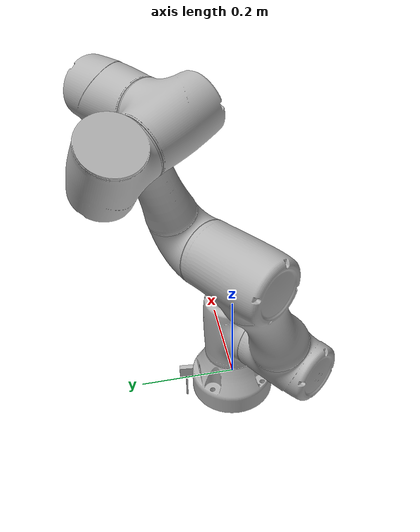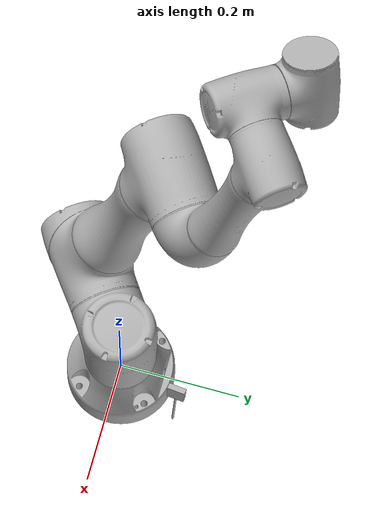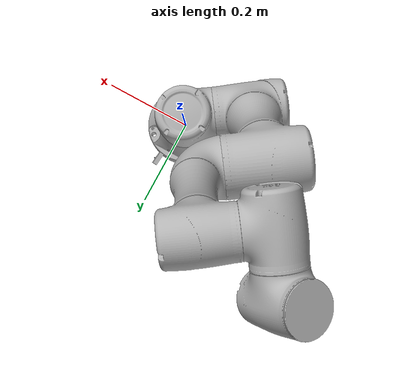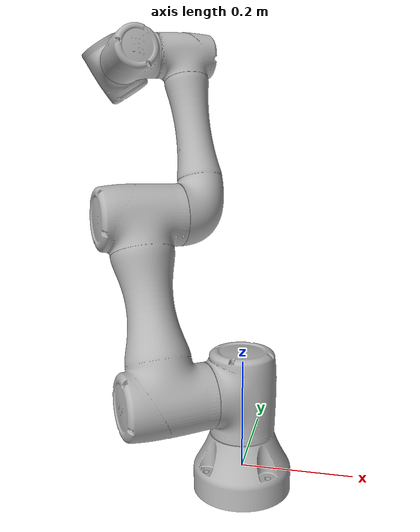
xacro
<?xml version="1.0" ?>
<robot name="cobot_trial2" xmlns:xacro="http://www.ros.org/wiki/xacro">

<xacro:include filename="$(find cobot_trial2_description)/urdf/materials.xacro" />
<xacro:include filename="$(find cobot_trial2_description)/urdf/cobot_trial2.trans" />
<xacro:include filename="$(find cobot_trial2_description)/urdf/cobot_trial2.gazebo" />
<xacro:include filename="$(find cobot_trial2_description)/urdf/camera.xacro" />
<xacro:include filename="$(find cobot2_new)/config/cobot_trial2.ros2_control.xacro"/>

<link name="base_link">
  <inertial>
    <origin xyz="0.0004794739708018026 -0.0002682940048133126 0.0024216914709679015" rpy="0 0 0"/>
    <mass value="14.129657044938508"/>
    <inertia ixx="0.036874" iyy="0.037256" izz="0.051216" ixy="6.1e-05" iyz="5.5e-05" ixz="-0.00018"/>
  </inertial>
  <visual>
    <origin xyz="0 0 0" rpy="0 0 0"/>
    <geometry>
      <mesh filename="file://$(find cobot_trial2_description)/meshes/base_link.stl" scale="0.001 0.001 0.001"/>
    </geometry>
    <material name="silver"/>
  </visual>
  <collision>
    <origin xyz="0 0 0" rpy="0 0 0"/>
    <geometry>
      <mesh filename="file://$(find cobot_trial2_description)/meshes/base_link.stl" scale="0.001 0.001 0.001"/>
    </geometry>
  </collision>
</link>

<link name="base_motor_v1_1">
  <inertial>
    <origin xyz="0.024899715980362478 1.5580695867734029e-06 -0.027377695231683125" rpy="0 0 0"/>
    <mass value="1.0930932247025902"/>
    <inertia ixx="0.000866" iyy="0.000852" izz="0.00045" ixy="0.0" iyz="-0.0" ixz="2.2e-05"/>
  </inertial>
  <visual>
    <origin xyz="0.027 -0.0 -0.066" rpy="0 0 0"/>
    <geometry>
      <mesh filename="file://$(find cobot_trial2_description)/meshes/base_motor_v1_1.stl" scale="0.001 0.001 0.001"/>
    </geometry>
    <material name="silver"/>
  </visual>
  <collision>
    <origin xyz="0.027 -0.0 -0.066" rpy="0 0 0"/>
    <geometry>
      <mesh filename="file://$(find cobot_trial2_description)/meshes/base_motor_v1_1.stl" scale="0.001 0.001 0.001"/>
    </geometry>
  </collision>
</link>

<link name="link1_v1_1">
  <inertial>
    <origin xyz="-0.0016893772760385151 -0.0011832639990666093 0.05833402903473016" rpy="0 0 0"/>
    <mass value="12.961267403331062"/>
    <inertia ixx="0.039457" iyy="0.039581" izz="0.027311" ixy="-0.000171" iyz="0.000266" ixz="0.00038"/>
  </inertial>
  <visual>
    <origin xyz="0.0 -0.0 -0.0866" rpy="0 0 0"/>
    <geometry>
      <mesh filename="file://$(find cobot_trial2_description)/meshes/link1_v1_1.stl" scale="0.001 0.001 0.001"/>
    </geometry>
    <material name="silver"/>
  </visual>
  <collision>
    <origin xyz="0.0 -0.0 -0.0866" rpy="0 0 0"/>
    <geometry>
      <mesh filename="file://$(find cobot_trial2_description)/meshes/link1_v1_1.stl" scale="0.001 0.001 0.001"/>
    </geometry>
  </collision>
</link>

<link name="link1_motor_v1_1">
  <inertial>
    <origin xyz="-0.04127130010581306 -0.02986534612180438 0.024893508337427858" rpy="0 0 0"/>
    <mass value="1.0898719762623763"/>
    <inertia ixx="0.000579" iyy="0.000714" izz="0.000859" ixy="-0.000185" iyz="-1.3e-05" ixz="-1.8e-05"/>
  </inertial>
  <visual>
    <origin xyz="-0.009097 -0.00733 -0.1211" rpy="0 0 0"/>
    <geometry>
      <mesh filename="file://$(find cobot_trial2_description)/meshes/link1_motor_v1_1.stl" scale="0.001 0.001 0.001"/>
    </geometry>
    <material name="silver"/>
  </visual>
  <collision>
    <origin xyz="-0.009097 -0.00733 -0.1211" rpy="0 0 0"/>
    <geometry>
      <mesh filename="file://$(find cobot_trial2_description)/meshes/link1_motor_v1_1.stl" scale="0.001 0.001 0.001"/>
    </geometry>
  </collision>
</link>

<link name="link2_motor_v1_1">
  <inertial>
    <origin xyz="0.02807812700252782 0.0314221306481786 0.02261117634714188" rpy="0 0 0"/>
    <mass value="1.0898637645140388"/>
    <inertia ixx="0.000572" iyy="0.000725" izz="0.000856" ixy="-0.000183" iyz="1.6e-05" ixz="1.3e-05"/>
  </inertial>
  <visual>
    <origin xyz="0.184891 -0.028047 -0.426582" rpy="0 0 0"/>
    <geometry>
      <mesh filename="file://$(find cobot_trial2_description)/meshes/link2_motor_v1_1.stl" scale="0.001 0.001 0.001"/>
    </geometry>
    <material name="silver"/>
  </visual>
  <collision>
    <origin xyz="0.184891 -0.028047 -0.426582" rpy="0 0 0"/>
    <geometry>
      <mesh filename="file://$(find cobot_trial2_description)/meshes/link2_motor_v1_1.stl" scale="0.001 0.001 0.001"/>
    </geometry>
  </collision>
</link>

<link name="link3_motor_v1_1">
  <inertial>
    <origin xyz="-0.044704661060319534 -0.021812786695896008 0.02365361795742238" rpy="0 0 0"/>
    <mass value="1.0758155712082471"/>
    <inertia ixx="0.000592" iyy="0.000752" izz="0.000924" ixy="-0.000236" iyz="-1e-05" ixz="-1.7e-05"/>
  </inertial>
  <visual>
    <origin xyz="0.135254 -0.200159 -0.72172" rpy="0 0 0"/>
    <geometry>
      <mesh filename="file://$(find cobot_trial2_description)/meshes/link3_motor_v1_1.stl" scale="0.001 0.001 0.001"/>
    </geometry>
    <material name="silver"/>
  </visual>
  <collision>
    <origin xyz="0.135254 -0.200159 -0.72172" rpy="0 0 0"/>
    <geometry>
      <mesh filename="file://$(find cobot_trial2_description)/meshes/link3_motor_v1_1.stl" scale="0.001 0.001 0.001"/>
    </geometry>
  </collision>
</link>

<link name="link4_motor_v1_1">
  <inertial>
    <origin xyz="-0.046630601076623396 0.021895305022229666 -0.008328708656389683" rpy="0 0 0"/>
    <mass value="1.0660193598921515"/>
    <inertia ixx="0.000722" iyy="0.000553" izz="0.000819" ixy="0.000181" iyz="6.1e-05" ixz="-3.9e-05"/>
  </inertial>
  <visual>
    <origin xyz="0.214552 -0.136988 -0.749772" rpy="0 0 0"/>
    <geometry>
      <mesh filename="file://$(find cobot_trial2_description)/meshes/link4_motor_v1_1.stl" scale="0.001 0.001 0.001"/>
    </geometry>
    <material name="silver"/>
  </visual>
  <collision>
    <origin xyz="0.214552 -0.136988 -0.749772" rpy="0 0 0"/>
    <geometry>
      <mesh filename="file://$(find cobot_trial2_description)/meshes/link4_motor_v1_1.stl" scale="0.001 0.001 0.001"/>
    </geometry>
  </collision>
</link>

<link name="link5_v1_1">
  <inertial>
    <origin xyz="-0.01500149565335046 0.0211205666258919 -0.00451062534429425" rpy="0 0 0"/>
    <mass value="5.998944180809606"/>
    <inertia ixx="0.00874" iyy="0.009464" izz="0.007468" ixy="-0.000156" iyz="0.000424" ixz="0.00135"/>
  </inertial>
  <visual>
    <origin xyz="0.289788 -0.196708 -0.732787" rpy="0 0 0"/>
    <geometry>
      <mesh filename="file://$(find cobot_trial2_description)/meshes/link5_v1_1.stl" scale="0.001 0.001 0.001"/>
    </geometry>
    <material name="silver"/>
  </visual>
  <collision>
    <origin xyz="0.289788 -0.196708 -0.732787" rpy="0 0 0"/>
    <geometry>
      <mesh filename="file://$(find cobot_trial2_description)/meshes/link5_v1_1.stl" scale="0.001 0.001 0.001"/>
    </geometry>
  </collision>
</link>

<link name="link4_v1_1">
  <inertial>
    <origin xyz="-0.0173562168328808 -0.02118345390543616 0.0013881928963557222" rpy="0 0 0"/>
    <mass value="4.349754355785353"/>
    <inertia ixx="0.006706" iyy="0.006348" izz="0.007469" ixy="0.000675" iyz="0.000252" ixz="-0.000189"/>
  </inertial>
  <visual>
    <origin xyz="0.22092 -0.150159 -0.746968" rpy="0 0 0"/>
    <geometry>
      <mesh filename="file://$(find cobot_trial2_description)/meshes/link4_v1_1.stl" scale="0.001 0.001 0.001"/>
    </geometry>
    <material name="silver"/>
  </visual>
  <collision>
    <origin xyz="0.22092 -0.150159 -0.746968" rpy="0 0 0"/>
    <geometry>
      <mesh filename="file://$(find cobot_trial2_description)/meshes/link4_v1_1.stl" scale="0.001 0.001 0.001"/>
    </geometry>
  </collision>
</link>

<link name="link3_v1_1">
  <inertial>
    <origin xyz="-0.007419574720521099 0.059264459302387135 0.14121606688933208" rpy="0 0 0"/>
    <mass value="17.28150836164706"/>
    <inertia ixx="0.270766" iyy="0.250006" izz="0.05172" ixy="0.012079" iyz="-0.077614" ixz="0.035983"/>
  </inertial>
  <visual>
    <origin xyz="0.118399 -0.087455 -0.451106" rpy="0 0 0"/>
    <geometry>
      <mesh filename="file://$(find cobot_trial2_description)/meshes/link3_v1_1.stl" scale="0.001 0.001 0.001"/>
    </geometry>
    <material name="silver"/>
  </visual>
  <collision>
    <origin xyz="0.118399 -0.087455 -0.451106" rpy="0 0 0"/>
    <geometry>
      <mesh filename="file://$(find cobot_trial2_description)/meshes/link3_v1_1.stl" scale="0.001 0.001 0.001"/>
    </geometry>
  </collision>
</link>

<link name="link2_v1_1">
  <inertial>
    <origin xyz="-0.0890244100380352 0.01933927378230619 0.14561445303188614" rpy="0 0 0"/>
    <mass value="40.55404925185744"/>
    <inertia ixx="0.813187" iyy="0.781889" izz="0.233649" ixy="0.05465" iyz="-0.238625" ixz="0.178695"/>
  </inertial>
  <visual>
    <origin xyz="0.071094 0.049799 -0.1481" rpy="0 0 0"/>
    <geometry>
      <mesh filename="file://$(find cobot_trial2_description)/meshes/link2_v1_1.stl" scale="0.001 0.001 0.001"/>
    </geometry>
    <material name="silver"/>
  </visual>
  <collision>
    <origin xyz="0.071094 0.049799 -0.1481" rpy="0 0 0"/>
    <geometry>
      <mesh filename="file://$(find cobot_trial2_description)/meshes/link2_v1_1.stl" scale="0.001 0.001 0.001"/>
    </geometry>
  </collision>
</link>

<joint name="base_motor_joint1" type="fixed">
  <origin xyz="-0.027 0.0 0.066" rpy="0 0 0"/>
  <parent link="base_link"/>
  <child link="base_motor_v1_1"/>
</joint>

<joint name="base_revolve" type="continuous">
  <origin xyz="0.027 0.0 0.0206" rpy="0 0 0"/>
  <parent link="base_motor_v1_1"/>
  <child link="link1_v1_1"/>
  <axis xyz="-0.0 0.0 1.0"/>
  <limit effort="87" lower="-2.9671" upper="2.9671" velocity="2.3925" />
</joint>

<joint name="link1_motor_joint" type="fixed">
  <origin xyz="0.009097 0.00733 0.0345" rpy="0 0 0"/>
  <parent link="link1_v1_1"/>
  <child link="link1_motor_v1_1"/>
</joint>

<joint name="link2_motor_joint" type="fixed">
  <origin xyz="-0.113797 0.077846 0.278482" rpy="0 0 0"/>
  <parent link="link2_v1_1"/>
  <child link="link2_motor_v1_1"/>
</joint>

<joint name="link3_motor_joint" type="fixed">
  <origin xyz="-0.016855 0.112704 0.270614" rpy="0 0 0"/>
  <parent link="link3_v1_1"/>
  <child link="link3_motor_v1_1"/>
</joint>

<joint name="link4_motor_joint" type="fixed">
  <origin xyz="0.006368 -0.013171 0.002804" rpy="0 0 0"/>
  <parent link="link4_v1_1"/>
  <child link="link4_motor_v1_1"/>
</joint>

<joint name="link4_revolve" type="continuous">
  <origin xyz="-0.075236 0.05972 -0.016985" rpy="0 0 0"/>
  <parent link="link4_motor_v1_1"/>
  <child link="link5_v1_1"/>
  <axis xyz="-0.564385 0.805718 -0.179688"/>
  <limit effort="87" lower="-1.8326" upper="1.8326" velocity="2.3925" />
</joint>

<joint name="link3_revolve" type="continuous">
  <origin xyz="-0.085666 -0.05 0.025248" rpy="0 0 0"/>
  <parent link="link3_motor_v1_1"/>
  <child link="link4_v1_1"/>
  <axis xyz="0.81905 0.573723 -0.0"/>
  <limit effort="87" lower="-2.9671" upper="2.9671" velocity="2.3925" />
</joint>

<joint name="link2_revolve" type="continuous">
  <origin xyz="0.066492 0.059408 0.024524" rpy="0 0 0"/>
  <parent link="link2_motor_v1_1"/>
  <child link="link3_v1_1"/>
  <axis xyz="0.81905 0.573723 -0.0"/>
  <limit effort="87" lower="-3.1416" upper="0.0873" velocity="2.3925" />
</joint>

<joint name="link1_revolve" type="continuous">
  <origin xyz="-0.080191 -0.057129 0.027" rpy="0 0 0"/>
  <parent link="link1_motor_v1_1"/>
  <child link="link2_v1_1"/>
  <axis xyz="-0.81905 -0.573723 -0.0"/>
  <limit effort="12" lower="-2.9671" upper="2.9671" velocity="2.8710" />
</joint>

    <!-- ROS 2 Control Interface -->
<ros2_control name="GazeboSystem" type="system">
  <hardware>
    <!-- ✅ Use the Gazebo plugin for simulation -->
    <plugin>gazebo_ros2_control/GazeboSystem</plugin>
  </hardware>

  <!-- Joints to be controlled -->
  <joint name="base_revolve">
    <command_interface name="position"/>
    <command_interface name="velocity"/>
    <state_interface name="position">
      <param name="initial_value">0.1</param>
    </state_interface>
    <state_interface name="velocity"/>
  </joint>

  <joint name="link1_revolve">
    <command_interface name="position"/>
    <command_interface name="velocity"/>
    <state_interface name="position">
      <param name="initial_value">0.1</param>
    </state_interface>
    <state_interface name="velocity"/>
  </joint>

  <joint name="link2_revolve">
    <command_interface name="position"/>
    <command_interface name="velocity"/>
    <state_interface name="position">
      <param name="initial_value">0.1</param>
    </state_interface>
    <state_interface name="velocity"/>
  </joint>

  <joint name="link3_revolve">
    <command_interface name="position"/>
    <command_interface name="velocity"/>
    <state_interface name="position">
      <param name="initial_value">0.1</param>
    </state_interface>
    <state_interface name="velocity"/>
  </joint>

  <joint name="link4_revolve">
    <command_interface name="position"/>
    <command_interface name="velocity"/>
    <state_interface name="position">
      <param name="initial_value">0.1</param>
    </state_interface>
    <state_interface name="velocity"/>
  </joint>
</ros2_control>

  <!-- ✅ Gazebo plugin for forwarding control from Gazebo to ROS 2 -->
<gazebo>
  <plugin name="gazebo_ros2_control" filename="libgazebo_ros2_control.so">
    <parameters>$(find cobot_trial2_description)/config/ros2_controllers.yaml</parameters>
  </plugin>
</gazebo>

</robot>

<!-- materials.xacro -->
<robot name="cobot_trial2" xmlns:xacro="http://www.ros.org/wiki/xacro" >

<material name="silver">
  <color rgba="0.700 0.700 0.700 1.000"/>
</material>

</robot>

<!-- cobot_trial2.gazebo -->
<robot name="cobot_trial2" xmlns:xacro="http://www.ros.org/wiki/xacro" >

<xacro:property name="body_color" value="Gazebo/Silver" />

<gazebo>
  <plugin name="control" filename="libgazebo_ros_control.so"/>
</gazebo>
<gazebo reference="base_link">
  <material>${body_color}</material>
  <mu1>0.2</mu1>
  <mu2>0.2</mu2>
  <self_collide>true</self_collide>
  <gravity>true</gravity>
</gazebo>

<gazebo reference="base_motor_v1_1">
  <material>${body_color}</material>
  <mu1>0.2</mu1>
  <mu2>0.2</mu2>
  <self_collide>true</self_collide>
</gazebo>

<gazebo reference="link1_v1_1">
  <material>${body_color}</material>
  <mu1>0.2</mu1>
  <mu2>0.2</mu2>
  <self_collide>true</self_collide>
</gazebo>

<gazebo reference="link1_motor_v1_1">
  <material>${body_color}</material>
  <mu1>0.2</mu1>
  <mu2>0.2</mu2>
  <self_collide>true</self_collide>
</gazebo>

<gazebo reference="link2_motor_v1_1">
  <material>${body_color}</material>
  <mu1>0.2</mu1>
  <mu2>0.2</mu2>
  <self_collide>true</self_collide>
</gazebo>

<gazebo reference="link3_motor_v1_1">
  <material>${body_color}</material>
  <mu1>0.2</mu1>
  <mu2>0.2</mu2>
  <self_collide>true</self_collide>
</gazebo>

<gazebo reference="link4_motor_v1_1">
  <material>${body_color}</material>
  <mu1>0.2</mu1>
  <mu2>0.2</mu2>
  <self_collide>true</self_collide>
</gazebo>

<gazebo reference="link5_v1_1">
  <material>${body_color}</material>
  <mu1>0.2</mu1>
  <mu2>0.2</mu2>
  <self_collide>true</self_collide>
</gazebo>

<gazebo reference="link4_v1_1">
  <material>${body_color}</material>
  <mu1>0.2</mu1>
  <mu2>0.2</mu2>
  <self_collide>true</self_collide>
</gazebo>

<gazebo reference="link3_v1_1">
  <material>${body_color}</material>
  <mu1>0.2</mu1>
  <mu2>0.2</mu2>
  <self_collide>true</self_collide>
</gazebo>

<gazebo reference="link2_v1_1">
  <material>${body_color}</material>
  <mu1>0.2</mu1>
  <mu2>0.2</mu2>
  <self_collide>true</self_collide>
</gazebo>

</robot>

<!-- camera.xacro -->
<robot xmlns:xacro="http://www.ros.org/wiki/xacro" >

    <joint name="camera_joint" type="fixed">
        <parent link="base_link"/>
        <child link="camera_link"/>
        <origin xyz="0.02 0.1 0.0" rpy="0 -0.1745 -0.10"/>
    </joint>

    <link name="camera_link">
        <visual>
            <geometry>
                <box size="0.010 0.03 0.03"/>
            </geometry>
            <material name="silver"/>
        </visual>
        <visual>
            <origin xyz="0 0 -0.05"/>
            <geometry>
                <cylinder radius="0.002" length="0.1"/>
            </geometry>
            <material name="silver"/>
        </visual>
    </link>

    <joint name="camera_optical_joint" type="fixed">
        <parent link="camera_link"/>
        <child link="camera_link_optical"/>
        <origin xyz="0 0 0" rpy="${-pi/2} 0 ${-pi/2}"/>
    </joint>

    <link name="camera_link_optical"></link>

    <gazebo reference="camera_link">
        <material>Gazebo/Silver</material>

        <sensor name="camera" type="depth">
            <pose> 0 0 0 0 0 0 </pose>
            <visualize>true</visualize>
            <update_rate>10</update_rate>
            <camera>
                <horizontal_fov>1.089</horizontal_fov>
                <image>
                    <format>R8G8B8</format>
                    <width>640</width>
                    <height>480</height>
                </image>
                <clip>
                    <near>0.05</near>
                    <far>8.0</far>
                </clip>
            </camera>
            <plugin name="camera_controller" filename="libgazebo_ros_camera.so">
                <frame_name>camera_link_optical</frame_name>
            </plugin>
        </sensor>
    </gazebo>

</robot>
